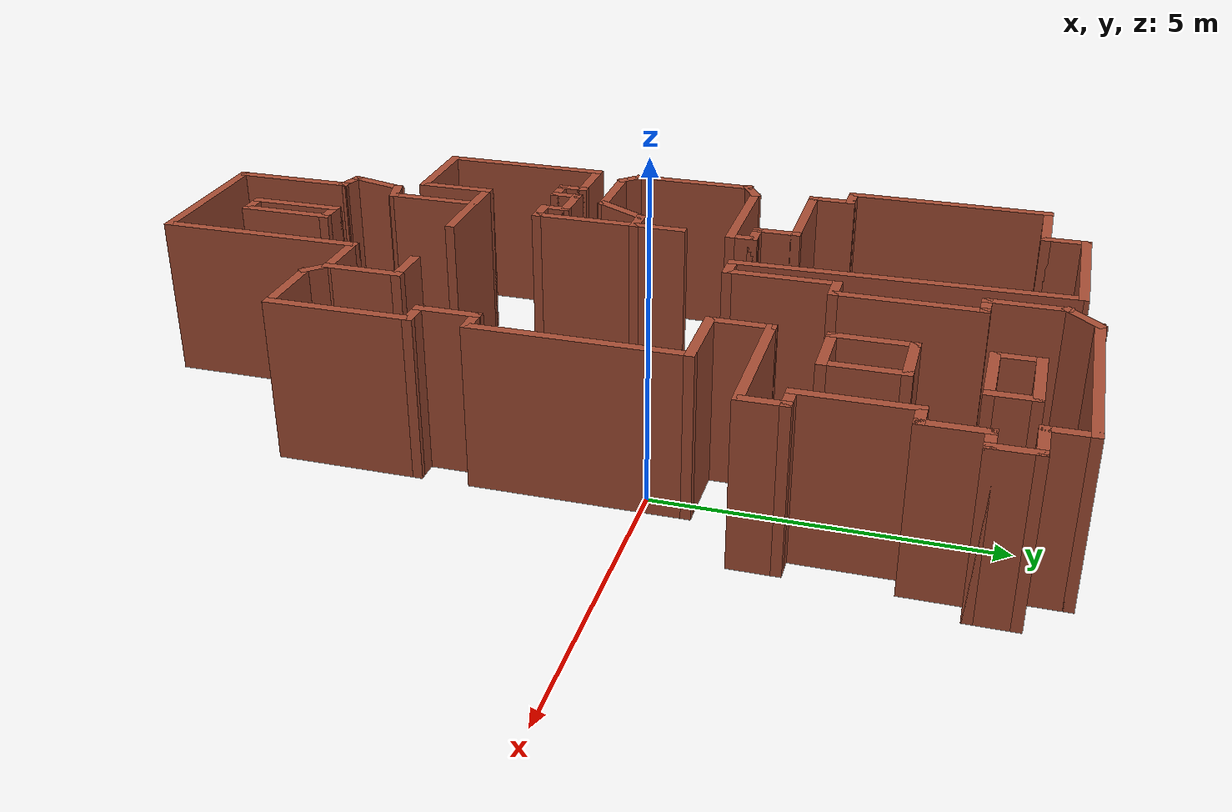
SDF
<?xml version='1.0'?>
<sdf version='1.6'>
  <model name='map_49'>
    <pose frame=''>-2.26527 -1.25132 0 0 -0 0</pose>
    <link name='Wall_0'>
      <collision name='Wall_0_Collision'>
        <geometry>
          <box>
            <size>2.25 0.15 2.5</size>
          </box>
        </geometry>
        <pose frame=''>0 0 1.25 0 -0 0</pose>
      </collision>
      <visual name='Wall_0_Visual'>
        <pose frame=''>0 0 1.25 0 -0 0</pose>
        <geometry>
          <box>
            <size>2.25 0.15 2.5</size>
          </box>
        </geometry>
        <material>
          <script>
            <uri>file://media/materials/scripts/gazebo.material</uri>
            <name>Gazebo/Bricks</name>
          </script>
          <ambient>1 1 1 1</ambient>
        </material>
        <meta>
          <layer>0</layer>
        </meta>
      </visual>
      <pose frame=''>-1.73014 6.76149 0 0 -0 3.14159</pose>
    </link>
    <link name='Wall_1'>
      <collision name='Wall_1_Collision'>
        <geometry>
          <box>
            <size>0.75 0.15 2.5</size>
          </box>
        </geometry>
        <pose frame=''>0 0 1.25 0 -0 0</pose>
      </collision>
      <visual name='Wall_1_Visual'>
        <pose frame=''>0 0 1.25 0 -0 0</pose>
        <geometry>
          <box>
            <size>0.75 0.15 2.5</size>
          </box>
        </geometry>
        <material>
          <script>
            <uri>file://media/materials/scripts/gazebo.material</uri>
            <name>Gazebo/Bricks</name>
          </script>
          <ambient>1 1 1 1</ambient>
        </material>
        <meta>
          <layer>0</layer>
        </meta>
      </visual>
      <pose frame=''>-2.78014 6.46149 0 0 -0 -1.5708</pose>
    </link>
    <link name='Wall_10'>
      <collision name='Wall_10_Collision'>
        <geometry>
          <box>
            <size>0.75 0.15 2.5</size>
          </box>
        </geometry>
        <pose frame=''>0 0 1.25 0 -0 0</pose>
      </collision>
      <visual name='Wall_10_Visual'>
        <pose frame=''>0 0 1.25 0 -0 0</pose>
        <geometry>
          <box>
            <size>0.75 0.15 2.5</size>
          </box>
        </geometry>
        <material>
          <script>
            <uri>file://media/materials/scripts/gazebo.material</uri>
            <name>Gazebo/Bricks</name>
          </script>
          <ambient>1 1 1 1</ambient>
        </material>
        <meta>
          <layer>0</layer>
        </meta>
      </visual>
      <pose frame=''>-1.93014 2.16149 0 0 -0 -1.5708</pose>
    </link>
    <link name='Wall_11'>
      <collision name='Wall_11_Collision'>
        <geometry>
          <box>
            <size>0.5 0.15 2.5</size>
          </box>
        </geometry>
        <pose frame=''>0 0 1.25 0 -0 0</pose>
      </collision>
      <visual name='Wall_11_Visual'>
        <pose frame=''>0 0 1.25 0 -0 0</pose>
        <geometry>
          <box>
            <size>0.5 0.15 2.5</size>
          </box>
        </geometry>
        <material>
          <script>
            <uri>file://media/materials/scripts/gazebo.material</uri>
            <name>Gazebo/Bricks</name>
          </script>
          <ambient>1 1 1 1</ambient>
        </material>
        <meta>
          <layer>0</layer>
        </meta>
      </visual>
      <pose frame=''>-1.75514 1.86149 0 0 -0 0</pose>
    </link>
    <link name='Wall_16'>
      <collision name='Wall_16_Collision'>
        <geometry>
          <box>
            <size>0.5 0.15 2.5</size>
          </box>
        </geometry>
        <pose frame=''>0 0 1.25 0 -0 0</pose>
      </collision>
      <visual name='Wall_16_Visual'>
        <pose frame=''>0 0 1.25 0 -0 0</pose>
        <geometry>
          <box>
            <size>0.5 0.15 2.5</size>
          </box>
        </geometry>
        <material>
          <script>
            <uri>file://media/materials/scripts/gazebo.material</uri>
            <name>Gazebo/Bricks</name>
          </script>
          <ambient>1 1 1 1</ambient>
        </material>
        <meta>
          <layer>0</layer>
        </meta>
      </visual>
      <pose frame=''>-1.58014 1.68649 0 0 -0 -1.5708</pose>
    </link>
    <link name='Wall_17'>
      <collision name='Wall_17_Collision'>
        <geometry>
          <box>
            <size>2 0.15 2.5</size>
          </box>
        </geometry>
        <pose frame=''>0 0 1.25 0 -0 0</pose>
      </collision>
      <visual name='Wall_17_Visual'>
        <pose frame=''>0 0 1.25 0 -0 0</pose>
        <geometry>
          <box>
            <size>2 0.15 2.5</size>
          </box>
        </geometry>
        <material>
          <script>
            <uri>file://media/materials/scripts/gazebo.material</uri>
            <name>Gazebo/Bricks</name>
          </script>
          <ambient>1 1 1 1</ambient>
        </material>
        <meta>
          <layer>0</layer>
        </meta>
      </visual>
      <pose frame=''>-2.50514 1.51149 0 0 -0 3.14159</pose>
    </link>
    <link name='Wall_18'>
      <collision name='Wall_18_Collision'>
        <geometry>
          <box>
            <size>0.5 0.15 2.5</size>
          </box>
        </geometry>
        <pose frame=''>0 0 1.25 0 -0 0</pose>
      </collision>
      <visual name='Wall_18_Visual'>
        <pose frame=''>0 0 1.25 0 -0 0</pose>
        <geometry>
          <box>
            <size>0.5 0.15 2.5</size>
          </box>
        </geometry>
        <material>
          <script>
            <uri>file://media/materials/scripts/gazebo.material</uri>
            <name>Gazebo/Bricks</name>
          </script>
          <ambient>1 1 1 1</ambient>
        </material>
        <meta>
          <layer>0</layer>
        </meta>
      </visual>
      <pose frame=''>-3.5817 1.42399 0 0 -0 -2.61799</pose>
    </link>
    <link name='Wall_19'>
      <collision name='Wall_19_Collision'>
        <geometry>
          <box>
            <size>2 0.15 2.5</size>
          </box>
        </geometry>
        <pose frame=''>0 0 1.25 0 -0 0</pose>
      </collision>
      <visual name='Wall_19_Visual'>
        <pose frame=''>0 0 1.25 0 -0 0</pose>
        <geometry>
          <box>
            <size>2 0.15 2.5</size>
          </box>
        </geometry>
        <material>
          <script>
            <uri>file://media/materials/scripts/gazebo.material</uri>
            <name>Gazebo/Bricks</name>
          </script>
          <ambient>1 1 1 1</ambient>
        </material>
        <meta>
          <layer>0</layer>
        </meta>
      </visual>
      <pose frame=''>-3.73325 0.411493 0 0 -0 -1.5708</pose>
    </link>
    <link name='Wall_2'>
      <collision name='Wall_2_Collision'>
        <geometry>
          <box>
            <size>1.25 0.15 2.5</size>
          </box>
        </geometry>
        <pose frame=''>0 0 1.25 0 -0 0</pose>
      </collision>
      <visual name='Wall_2_Visual'>
        <pose frame=''>0 0 1.25 0 -0 0</pose>
        <geometry>
          <box>
            <size>1.25 0.15 2.5</size>
          </box>
        </geometry>
        <material>
          <script>
            <uri>file://media/materials/scripts/gazebo.material</uri>
            <name>Gazebo/Bricks</name>
          </script>
          <ambient>1 1 1 1</ambient>
        </material>
        <meta>
          <layer>0</layer>
        </meta>
      </visual>
      <pose frame=''>-3.33014 6.16149 0 0 -0 3.14159</pose>
    </link>
    <link name='Wall_20'>
      <collision name='Wall_20_Collision'>
        <geometry>
          <box>
            <size>0.5 0.15 2.5</size>
          </box>
        </geometry>
        <pose frame=''>0 0 1.25 0 -0 0</pose>
      </collision>
      <visual name='Wall_20_Visual'>
        <pose frame=''>0 0 1.25 0 -0 0</pose>
        <geometry>
          <box>
            <size>0.5 0.15 2.5</size>
          </box>
        </geometry>
        <material>
          <script>
            <uri>file://media/materials/scripts/gazebo.material</uri>
            <name>Gazebo/Bricks</name>
          </script>
          <ambient>1 1 1 1</ambient>
        </material>
        <meta>
          <layer>0</layer>
        </meta>
      </visual>
      <pose frame=''>-3.60951 -0.637251 0 0 -0 -0.785398</pose>
    </link>
    <link name='Wall_21'>
      <collision name='Wall_21_Collision'>
        <geometry>
          <box>
            <size>1.25 0.15 2.5</size>
          </box>
        </geometry>
        <pose frame=''>0 0 1.25 0 -0 0</pose>
      </collision>
      <visual name='Wall_21_Visual'>
        <pose frame=''>0 0 1.25 0 -0 0</pose>
        <geometry>
          <box>
            <size>1.25 0.15 2.5</size>
          </box>
        </geometry>
        <material>
          <script>
            <uri>file://media/materials/scripts/gazebo.material</uri>
            <name>Gazebo/Bricks</name>
          </script>
          <ambient>1 1 1 1</ambient>
        </material>
        <meta>
          <layer>0</layer>
        </meta>
      </visual>
      <pose frame=''>-2.93576 -0.760995 0 0 -0 0</pose>
    </link>
    <link name='Wall_22'>
      <collision name='Wall_22_Collision'>
        <geometry>
          <box>
            <size>1 0.15 2.5</size>
          </box>
        </geometry>
        <pose frame=''>0 0 1.25 0 -0 0</pose>
      </collision>
      <visual name='Wall_22_Visual'>
        <pose frame=''>0 0 1.25 0 -0 0</pose>
        <geometry>
          <box>
            <size>1 0.15 2.5</size>
          </box>
        </geometry>
        <material>
          <script>
            <uri>file://media/materials/scripts/gazebo.material</uri>
            <name>Gazebo/Bricks</name>
          </script>
          <ambient>1 1 1 1</ambient>
        </material>
        <meta>
          <layer>0</layer>
        </meta>
      </visual>
      <pose frame=''>-2.17326 -0.392934 0 0 -0 1.0472</pose>
    </link>
    <link name='Wall_23'>
      <collision name='Wall_23_Collision'>
        <geometry>
          <box>
            <size>0.5 0.15 2.5</size>
          </box>
        </geometry>
        <pose frame=''>0 0 1.25 0 -0 0</pose>
      </collision>
      <visual name='Wall_23_Visual'>
        <pose frame=''>0 0 1.25 0 -0 0</pose>
        <geometry>
          <box>
            <size>0.5 0.15 2.5</size>
          </box>
        </geometry>
        <material>
          <script>
            <uri>file://media/materials/scripts/gazebo.material</uri>
            <name>Gazebo/Bricks</name>
          </script>
          <ambient>1 1 1 1</ambient>
        </material>
        <meta>
          <layer>0</layer>
        </meta>
      </visual>
      <pose frame=''>-1.78576 -0.024873 0 0 -0 0</pose>
    </link>
    <link name='Wall_25'>
      <collision name='Wall_25_Collision'>
        <geometry>
          <box>
            <size>2.5 0.15 2.5</size>
          </box>
        </geometry>
        <pose frame=''>0 0 1.25 0 -0 0</pose>
      </collision>
      <visual name='Wall_25_Visual'>
        <pose frame=''>0 0 1.25 0 -0 0</pose>
        <geometry>
          <box>
            <size>2.5 0.15 2.5</size>
          </box>
        </geometry>
        <material>
          <script>
            <uri>file://media/materials/scripts/gazebo.material</uri>
            <name>Gazebo/Bricks</name>
          </script>
          <ambient>1 1 1 1</ambient>
        </material>
        <meta>
          <layer>0</layer>
        </meta>
      </visual>
      <pose frame=''>-1.61115 -0.451753 0 0 -0 -1.5708</pose>
    </link>
    <link name='Wall_26'>
      <collision name='Wall_26_Collision'>
        <geometry>
          <box>
            <size>0.5 0.15 2.5</size>
          </box>
        </geometry>
        <pose frame=''>0 0 1.25 0 -0 0</pose>
      </collision>
      <visual name='Wall_26_Visual'>
        <pose frame=''>0 0 1.25 0 -0 0</pose>
        <geometry>
          <box>
            <size>0.5 0.15 2.5</size>
          </box>
        </geometry>
        <material>
          <script>
            <uri>file://media/materials/scripts/gazebo.material</uri>
            <name>Gazebo/Bricks</name>
          </script>
          <ambient>1 1 1 1</ambient>
        </material>
        <meta>
          <layer>0</layer>
        </meta>
      </visual>
      <pose frame=''>-1.78615 -1.62675 0 0 -0 3.14159</pose>
    </link>
    <link name='Wall_27'>
      <collision name='Wall_27_Collision'>
        <geometry>
          <box>
            <size>0.5 0.15 2.5</size>
          </box>
        </geometry>
        <pose frame=''>0 0 1.25 0 -0 0</pose>
      </collision>
      <visual name='Wall_27_Visual'>
        <pose frame=''>0 0 1.25 0 -0 0</pose>
        <geometry>
          <box>
            <size>0.5 0.15 2.5</size>
          </box>
        </geometry>
        <material>
          <script>
            <uri>file://media/materials/scripts/gazebo.material</uri>
            <name>Gazebo/Bricks</name>
          </script>
          <ambient>1 1 1 1</ambient>
        </material>
        <meta>
          <layer>0</layer>
        </meta>
      </visual>
      <pose frame=''>-1.96115 -1.45175 0 0 -0 1.5708</pose>
    </link>
    <link name='Wall_28'>
      <collision name='Wall_28_Collision'>
        <geometry>
          <box>
            <size>0.75 0.15 2.5</size>
          </box>
        </geometry>
        <pose frame=''>0 0 1.25 0 -0 0</pose>
      </collision>
      <visual name='Wall_28_Visual'>
        <pose frame=''>0 0 1.25 0 -0 0</pose>
        <geometry>
          <box>
            <size>0.75 0.15 2.5</size>
          </box>
        </geometry>
        <material>
          <script>
            <uri>file://media/materials/scripts/gazebo.material</uri>
            <name>Gazebo/Bricks</name>
          </script>
          <ambient>1 1 1 1</ambient>
        </material>
        <meta>
          <layer>0</layer>
        </meta>
      </visual>
      <pose frame=''>-2.26115 -1.27675 0 0 -0 3.14159</pose>
    </link>
    <link name='Wall_29'>
      <collision name='Wall_29_Collision'>
        <geometry>
          <box>
            <size>0.5 0.15 2.5</size>
          </box>
        </geometry>
        <pose frame=''>0 0 1.25 0 -0 0</pose>
      </collision>
      <visual name='Wall_29_Visual'>
        <pose frame=''>0 0 1.25 0 -0 0</pose>
        <geometry>
          <box>
            <size>0.5 0.15 2.5</size>
          </box>
        </geometry>
        <material>
          <script>
            <uri>file://media/materials/scripts/gazebo.material</uri>
            <name>Gazebo/Bricks</name>
          </script>
          <ambient>1 1 1 1</ambient>
        </material>
        <meta>
          <layer>0</layer>
        </meta>
      </visual>
      <pose frame=''>-2.56115 -1.45175 0 0 -0 -1.5708</pose>
    </link>
    <link name='Wall_3'>
      <collision name='Wall_3_Collision'>
        <geometry>
          <box>
            <size>3.25 0.15 2.5</size>
          </box>
        </geometry>
        <pose frame=''>0 0 1.25 0 -0 0</pose>
      </collision>
      <visual name='Wall_3_Visual'>
        <pose frame=''>0 0 1.25 0 -0 0</pose>
        <geometry>
          <box>
            <size>3.25 0.15 2.5</size>
          </box>
        </geometry>
        <material>
          <script>
            <uri>file://media/materials/scripts/gazebo.material</uri>
            <name>Gazebo/Bricks</name>
          </script>
          <ambient>1 1 1 1</ambient>
        </material>
        <meta>
          <layer>0</layer>
        </meta>
      </visual>
      <pose frame=''>-3.88014 4.61149 0 0 -0 -1.5708</pose>
    </link>
    <link name='Wall_30'>
      <collision name='Wall_30_Collision'>
        <geometry>
          <box>
            <size>0.5 0.15 2.5</size>
          </box>
        </geometry>
        <pose frame=''>0 0 1.25 0 -0 0</pose>
      </collision>
      <visual name='Wall_30_Visual'>
        <pose frame=''>0 0 1.25 0 -0 0</pose>
        <geometry>
          <box>
            <size>0.5 0.15 2.5</size>
          </box>
        </geometry>
        <material>
          <script>
            <uri>file://media/materials/scripts/gazebo.material</uri>
            <name>Gazebo/Bricks</name>
          </script>
          <ambient>1 1 1 1</ambient>
        </material>
        <meta>
          <layer>0</layer>
        </meta>
      </visual>
      <pose frame=''>-2.73615 -1.62675 0 0 -0 3.14159</pose>
    </link>
    <link name='Wall_31'>
      <collision name='Wall_31_Collision'>
        <geometry>
          <box>
            <size>0.5 0.15 2.5</size>
          </box>
        </geometry>
        <pose frame=''>0 0 1.25 0 -0 0</pose>
      </collision>
      <visual name='Wall_31_Visual'>
        <pose frame=''>0 0 1.25 0 -0 0</pose>
        <geometry>
          <box>
            <size>0.5 0.15 2.5</size>
          </box>
        </geometry>
        <material>
          <script>
            <uri>file://media/materials/scripts/gazebo.material</uri>
            <name>Gazebo/Bricks</name>
          </script>
          <ambient>1 1 1 1</ambient>
        </material>
        <meta>
          <layer>0</layer>
        </meta>
      </visual>
      <pose frame=''>-2.91115 -1.45175 0 0 -0 1.5708</pose>
    </link>
    <link name='Wall_32'>
      <collision name='Wall_32_Collision'>
        <geometry>
          <box>
            <size>1 0.15 2.5</size>
          </box>
        </geometry>
        <pose frame=''>0 0 1.25 0 -0 0</pose>
      </collision>
      <visual name='Wall_32_Visual'>
        <pose frame=''>0 0 1.25 0 -0 0</pose>
        <geometry>
          <box>
            <size>1 0.15 2.5</size>
          </box>
        </geometry>
        <material>
          <script>
            <uri>file://media/materials/scripts/gazebo.material</uri>
            <name>Gazebo/Bricks</name>
          </script>
          <ambient>1 1 1 1</ambient>
        </material>
        <meta>
          <layer>0</layer>
        </meta>
      </visual>
      <pose frame=''>-3.33615 -1.27675 0 0 -0 3.14159</pose>
    </link>
    <link name='Wall_33'>
      <collision name='Wall_33_Collision'>
        <geometry>
          <box>
            <size>2.75 0.15 2.5</size>
          </box>
        </geometry>
        <pose frame=''>0 0 1.25 0 -0 0</pose>
      </collision>
      <visual name='Wall_33_Visual'>
        <pose frame=''>0 0 1.25 0 -0 0</pose>
        <geometry>
          <box>
            <size>2.75 0.15 2.5</size>
          </box>
        </geometry>
        <material>
          <script>
            <uri>file://media/materials/scripts/gazebo.material</uri>
            <name>Gazebo/Bricks</name>
          </script>
          <ambient>1 1 1 1</ambient>
        </material>
        <meta>
          <layer>0</layer>
        </meta>
      </visual>
      <pose frame=''>-3.76115 -2.57675 0 0 -0 -1.5708</pose>
    </link>
    <link name='Wall_34'>
      <collision name='Wall_34_Collision'>
        <geometry>
          <box>
            <size>1.5 0.15 2.5</size>
          </box>
        </geometry>
        <pose frame=''>0 0 1.25 0 -0 0</pose>
      </collision>
      <visual name='Wall_34_Visual'>
        <pose frame=''>0 0 1.25 0 -0 0</pose>
        <geometry>
          <box>
            <size>1.5 0.15 2.5</size>
          </box>
        </geometry>
        <material>
          <script>
            <uri>file://media/materials/scripts/gazebo.material</uri>
            <name>Gazebo/Bricks</name>
          </script>
          <ambient>1 1 1 1</ambient>
        </material>
        <meta>
          <layer>0</layer>
        </meta>
      </visual>
      <pose frame=''>-3.08615 -3.87675 0 0 -0 0</pose>
    </link>
    <link name='Wall_35'>
      <collision name='Wall_35_Collision'>
        <geometry>
          <box>
            <size>1.25 0.15 2.5</size>
          </box>
        </geometry>
        <pose frame=''>0 0 1.25 0 -0 0</pose>
      </collision>
      <visual name='Wall_35_Visual'>
        <pose frame=''>0 0 1.25 0 -0 0</pose>
        <geometry>
          <box>
            <size>1.25 0.15 2.5</size>
          </box>
        </geometry>
        <material>
          <script>
            <uri>file://media/materials/scripts/gazebo.material</uri>
            <name>Gazebo/Bricks</name>
          </script>
          <ambient>1 1 1 1</ambient>
        </material>
        <meta>
          <layer>0</layer>
        </meta>
      </visual>
      <pose frame=''>-2.41115 -3.32675 0 0 -0 1.5708</pose>
    </link>
    <link name='Wall_37'>
      <collision name='Wall_37_Collision'>
        <geometry>
          <box>
            <size>1.75 0.15 2.5</size>
          </box>
        </geometry>
        <pose frame=''>0 0 1.25 0 -0 0</pose>
      </collision>
      <visual name='Wall_37_Visual'>
        <pose frame=''>0 0 1.25 0 -0 0</pose>
        <geometry>
          <box>
            <size>1.75 0.15 2.5</size>
          </box>
        </geometry>
        <material>
          <script>
            <uri>file://media/materials/scripts/gazebo.material</uri>
            <name>Gazebo/Bricks</name>
          </script>
          <ambient>1 1 1 1</ambient>
        </material>
        <meta>
          <layer>0</layer>
        </meta>
      </visual>
      <pose frame=''>-1.61115 -2.77675 0 0 -0 0</pose>
    </link>
    <link name='Wall_39'>
      <collision name='Wall_39_Collision'>
        <geometry>
          <box>
            <size>1.5 0.15 2.5</size>
          </box>
        </geometry>
        <pose frame=''>0 0 1.25 0 -0 0</pose>
      </collision>
      <visual name='Wall_39_Visual'>
        <pose frame=''>0 0 1.25 0 -0 0</pose>
        <geometry>
          <box>
            <size>1.5 0.15 2.5</size>
          </box>
        </geometry>
        <material>
          <script>
            <uri>file://media/materials/scripts/gazebo.material</uri>
            <name>Gazebo/Bricks</name>
          </script>
          <ambient>1 1 1 1</ambient>
        </material>
        <meta>
          <layer>0</layer>
        </meta>
      </visual>
      <pose frame=''>-1.79735 -3.48958 0 0 -0 -1.5708</pose>
    </link>
    <link name='Wall_4'>
      <collision name='Wall_4_Collision'>
        <geometry>
          <box>
            <size>0.5 0.15 2.5</size>
          </box>
        </geometry>
        <pose frame=''>0 0 1.25 0 -0 0</pose>
      </collision>
      <visual name='Wall_4_Visual'>
        <pose frame=''>0 0 1.25 0 -0 0</pose>
        <geometry>
          <box>
            <size>0.5 0.15 2.5</size>
          </box>
        </geometry>
        <material>
          <script>
            <uri>file://media/materials/scripts/gazebo.material</uri>
            <name>Gazebo/Bricks</name>
          </script>
          <ambient>1 1 1 1</ambient>
        </material>
        <meta>
          <layer>0</layer>
        </meta>
      </visual>
      <pose frame=''>-3.70514 3.06149 0 0 -0 0</pose>
    </link>
    <link name='Wall_40'>
      <collision name='Wall_40_Collision'>
        <geometry>
          <box>
            <size>0.5 0.15 2.5</size>
          </box>
        </geometry>
        <pose frame=''>0 0 1.25 0 -0 0</pose>
      </collision>
      <visual name='Wall_40_Visual'>
        <pose frame=''>0 0 1.25 0 -0 0</pose>
        <geometry>
          <box>
            <size>0.5 0.15 2.5</size>
          </box>
        </geometry>
        <material>
          <script>
            <uri>file://media/materials/scripts/gazebo.material</uri>
            <name>Gazebo/Bricks</name>
          </script>
          <ambient>1 1 1 1</ambient>
        </material>
        <meta>
          <layer>0</layer>
        </meta>
      </visual>
      <pose frame=''>-1.96639 -4.20987 0 0 -0 -2.87979</pose>
    </link>
    <link name='Wall_41'>
      <collision name='Wall_41_Collision'>
        <geometry>
          <box>
            <size>1 0.15 2.5</size>
          </box>
        </geometry>
        <pose frame=''>0 0 1.25 0 -0 0</pose>
      </collision>
      <visual name='Wall_41_Visual'>
        <pose frame=''>0 0 1.25 0 -0 0</pose>
        <geometry>
          <box>
            <size>1 0.15 2.5</size>
          </box>
        </geometry>
        <material>
          <script>
            <uri>file://media/materials/scripts/gazebo.material</uri>
            <name>Gazebo/Bricks</name>
          </script>
          <ambient>1 1 1 1</ambient>
        </material>
        <meta>
          <layer>0</layer>
        </meta>
      </visual>
      <pose frame=''>-2.24542 -4.66568 0 0 -0 -1.8326</pose>
    </link>
    <link name='Wall_42'>
      <collision name='Wall_42_Collision'>
        <geometry>
          <box>
            <size>0.5 0.15 2.5</size>
          </box>
        </geometry>
        <pose frame=''>0 0 1.25 0 -0 0</pose>
      </collision>
      <visual name='Wall_42_Visual'>
        <pose frame=''>0 0 1.25 0 -0 0</pose>
        <geometry>
          <box>
            <size>0.5 0.15 2.5</size>
          </box>
        </geometry>
        <material>
          <script>
            <uri>file://media/materials/scripts/gazebo.material</uri>
            <name>Gazebo/Bricks</name>
          </script>
          <ambient>1 1 1 1</ambient>
        </material>
        <meta>
          <layer>0</layer>
        </meta>
      </visual>
      <pose frame=''>-2.18638 -5.1215 0 0 -0 -0.261799</pose>
    </link>
    <link name='Wall_43'>
      <collision name='Wall_43_Collision'>
        <geometry>
          <box>
            <size>2 0.15 2.5</size>
          </box>
        </geometry>
        <pose frame=''>0 0 1.25 0 -0 0</pose>
      </collision>
      <visual name='Wall_43_Visual'>
        <pose frame=''>0 0 1.25 0 -0 0</pose>
        <geometry>
          <box>
            <size>2 0.15 2.5</size>
          </box>
        </geometry>
        <material>
          <script>
            <uri>file://media/materials/scripts/gazebo.material</uri>
            <name>Gazebo/Bricks</name>
          </script>
          <ambient>1 1 1 1</ambient>
        </material>
        <meta>
          <layer>0</layer>
        </meta>
      </visual>
      <pose frame=''>-2.01735 -6.09179 0 0 -0 -1.5708</pose>
    </link>
    <link name='Wall_44'>
      <collision name='Wall_44_Collision'>
        <geometry>
          <box>
            <size>2.5 0.15 2.5</size>
          </box>
        </geometry>
        <pose frame=''>0 0 1.25 0 -0 0</pose>
      </collision>
      <visual name='Wall_44_Visual'>
        <pose frame=''>0 0 1.25 0 -0 0</pose>
        <geometry>
          <box>
            <size>2.5 0.15 2.5</size>
          </box>
        </geometry>
        <material>
          <script>
            <uri>file://media/materials/scripts/gazebo.material</uri>
            <name>Gazebo/Bricks</name>
          </script>
          <ambient>1 1 1 1</ambient>
        </material>
        <meta>
          <layer>0</layer>
        </meta>
      </visual>
      <pose frame=''>-0.842346 -7.01679 0 0 -0 0</pose>
    </link>
    <link name='Wall_45'>
      <collision name='Wall_45_Collision'>
        <geometry>
          <box>
            <size>3.25 0.15 2.5</size>
          </box>
        </geometry>
        <pose frame=''>0 0 1.25 0 -0 0</pose>
      </collision>
      <visual name='Wall_45_Visual'>
        <pose frame=''>0 0 1.25 0 -0 0</pose>
        <geometry>
          <box>
            <size>3.25 0.15 2.5</size>
          </box>
        </geometry>
        <material>
          <script>
            <uri>file://media/materials/scripts/gazebo.material</uri>
            <name>Gazebo/Bricks</name>
          </script>
          <ambient>1 1 1 1</ambient>
        </material>
        <meta>
          <layer>0</layer>
        </meta>
      </visual>
      <pose frame=''>0.332654 -5.46679 0 0 -0 1.5708</pose>
    </link>
    <link name='Wall_46'>
      <collision name='Wall_46_Collision'>
        <geometry>
          <box>
            <size>1 0.15 2.5</size>
          </box>
        </geometry>
        <pose frame=''>0 0 1.25 0 -0 0</pose>
      </collision>
      <visual name='Wall_46_Visual'>
        <pose frame=''>0 0 1.25 0 -0 0</pose>
        <geometry>
          <box>
            <size>1 0.15 2.5</size>
          </box>
        </geometry>
        <material>
          <script>
            <uri>file://media/materials/scripts/gazebo.material</uri>
            <name>Gazebo/Bricks</name>
          </script>
          <ambient>1 1 1 1</ambient>
        </material>
        <meta>
          <layer>0</layer>
        </meta>
      </visual>
      <pose frame=''>0.757654 -3.91679 0 0 -0 0</pose>
    </link>
    <link name='Wall_47'>
      <collision name='Wall_47_Collision'>
        <geometry>
          <box>
            <size>1.25 0.15 2.5</size>
          </box>
        </geometry>
        <pose frame=''>0 0 1.25 0 -0 0</pose>
      </collision>
      <visual name='Wall_47_Visual'>
        <pose frame=''>0 0 1.25 0 -0 0</pose>
        <geometry>
          <box>
            <size>1.25 0.15 2.5</size>
          </box>
        </geometry>
        <material>
          <script>
            <uri>file://media/materials/scripts/gazebo.material</uri>
            <name>Gazebo/Bricks</name>
          </script>
          <ambient>1 1 1 1</ambient>
        </material>
        <meta>
          <layer>0</layer>
        </meta>
      </visual>
      <pose frame=''>1.18265 -3.36679 0 0 -0 1.5708</pose>
    </link>
    <link name='Wall_48'>
      <collision name='Wall_48_Collision'>
        <geometry>
          <box>
            <size>0.75 0.15 2.5</size>
          </box>
        </geometry>
        <pose frame=''>0 0 1.25 0 -0 0</pose>
      </collision>
      <visual name='Wall_48_Visual'>
        <pose frame=''>0 0 1.25 0 -0 0</pose>
        <geometry>
          <box>
            <size>0.75 0.15 2.5</size>
          </box>
        </geometry>
        <material>
          <script>
            <uri>file://media/materials/scripts/gazebo.material</uri>
            <name>Gazebo/Bricks</name>
          </script>
          <ambient>1 1 1 1</ambient>
        </material>
        <meta>
          <layer>0</layer>
        </meta>
      </visual>
      <pose frame=''>0.882654 -2.81679 0 0 -0 3.14159</pose>
    </link>
    <link name='Wall_5'>
      <collision name='Wall_5_Collision'>
        <geometry>
          <box>
            <size>0.75 0.15 2.5</size>
          </box>
        </geometry>
        <pose frame=''>0 0 1.25 0 -0 0</pose>
      </collision>
      <visual name='Wall_5_Visual'>
        <pose frame=''>0 0 1.25 0 -0 0</pose>
        <geometry>
          <box>
            <size>0.75 0.15 2.5</size>
          </box>
        </geometry>
        <material>
          <script>
            <uri>file://media/materials/scripts/gazebo.material</uri>
            <name>Gazebo/Bricks</name>
          </script>
          <ambient>1 1 1 1</ambient>
        </material>
        <meta>
          <layer>0</layer>
        </meta>
      </visual>
      <pose frame=''>-3.53014 2.76149 0 0 -0 -1.5708</pose>
    </link>
    <link name='Wall_50'>
      <collision name='Wall_50_Collision'>
        <geometry>
          <box>
            <size>0.5 0.15 2.5</size>
          </box>
        </geometry>
        <pose frame=''>0 0 1.25 0 -0 0</pose>
      </collision>
      <visual name='Wall_50_Visual'>
        <pose frame=''>0 0 1.25 0 -0 0</pose>
        <geometry>
          <box>
            <size>0.5 0.15 2.5</size>
          </box>
        </geometry>
        <material>
          <script>
            <uri>file://media/materials/scripts/gazebo.material</uri>
            <name>Gazebo/Bricks</name>
          </script>
          <ambient>1 1 1 1</ambient>
        </material>
        <meta>
          <layer>0</layer>
        </meta>
      </visual>
      <pose frame=''>1.3064 -4.04053 0 0 -0 -0.785398</pose>
    </link>
    <link name='Wall_51'>
      <collision name='Wall_51_Collision'>
        <geometry>
          <box>
            <size>1.25 0.15 2.5</size>
          </box>
        </geometry>
        <pose frame=''>0 0 1.25 0 -0 0</pose>
      </collision>
      <visual name='Wall_51_Visual'>
        <pose frame=''>0 0 1.25 0 -0 0</pose>
        <geometry>
          <box>
            <size>1.25 0.15 2.5</size>
          </box>
        </geometry>
        <material>
          <script>
            <uri>file://media/materials/scripts/gazebo.material</uri>
            <name>Gazebo/Bricks</name>
          </script>
          <ambient>1 1 1 1</ambient>
        </material>
        <meta>
          <layer>0</layer>
        </meta>
      </visual>
      <pose frame=''>1.98014 -4.16428 0 0 -0 0</pose>
    </link>
    <link name='Wall_52'>
      <collision name='Wall_52_Collision'>
        <geometry>
          <box>
            <size>2.25 0.15 2.5</size>
          </box>
        </geometry>
        <pose frame=''>0 0 1.25 0 -0 0</pose>
      </collision>
      <visual name='Wall_52_Visual'>
        <pose frame=''>0 0 1.25 0 -0 0</pose>
        <geometry>
          <box>
            <size>2.25 0.15 2.5</size>
          </box>
        </geometry>
        <material>
          <script>
            <uri>file://media/materials/scripts/gazebo.material</uri>
            <name>Gazebo/Bricks</name>
          </script>
          <ambient>1 1 1 1</ambient>
        </material>
        <meta>
          <layer>0</layer>
        </meta>
      </visual>
      <pose frame=''>2.53014 -3.11428 0 0 -0 1.5708</pose>
    </link>
    <link name='Wall_55'>
      <collision name='Wall_55_Collision'>
        <geometry>
          <box>
            <size>0.5 0.15 2.5</size>
          </box>
        </geometry>
        <pose frame=''>0 0 1.25 0 -0 0</pose>
      </collision>
      <visual name='Wall_55_Visual'>
        <pose frame=''>0 0 1.25 0 -0 0</pose>
        <geometry>
          <box>
            <size>0.5 0.15 2.5</size>
          </box>
        </geometry>
        <material>
          <script>
            <uri>file://media/materials/scripts/gazebo.material</uri>
            <name>Gazebo/Bricks</name>
          </script>
          <ambient>1 1 1 1</ambient>
        </material>
        <meta>
          <layer>0</layer>
        </meta>
      </visual>
      <pose frame=''>2.35514 -2.06428 0 0 -0 3.14159</pose>
    </link>
    <link name='Wall_56'>
      <collision name='Wall_56_Collision'>
        <geometry>
          <box>
            <size>1 0.15 2.5</size>
          </box>
        </geometry>
        <pose frame=''>0 0 1.25 0 -0 0</pose>
      </collision>
      <visual name='Wall_56_Visual'>
        <pose frame=''>0 0 1.25 0 -0 0</pose>
        <geometry>
          <box>
            <size>1 0.15 2.5</size>
          </box>
        </geometry>
        <material>
          <script>
            <uri>file://media/materials/scripts/gazebo.material</uri>
            <name>Gazebo/Bricks</name>
          </script>
          <ambient>1 1 1 1</ambient>
        </material>
        <meta>
          <layer>0</layer>
        </meta>
      </visual>
      <pose frame=''>2.18014 -1.63928 0 0 -0 1.5708</pose>
    </link>
    <link name='Wall_57'>
      <collision name='Wall_57_Collision'>
        <geometry>
          <box>
            <size>0.5 0.15 2.5</size>
          </box>
        </geometry>
        <pose frame=''>0 0 1.25 0 -0 0</pose>
      </collision>
      <visual name='Wall_57_Visual'>
        <pose frame=''>0 0 1.25 0 -0 0</pose>
        <geometry>
          <box>
            <size>0.5 0.15 2.5</size>
          </box>
        </geometry>
        <material>
          <script>
            <uri>file://media/materials/scripts/gazebo.material</uri>
            <name>Gazebo/Bricks</name>
          </script>
          <ambient>1 1 1 1</ambient>
        </material>
        <meta>
          <layer>0</layer>
        </meta>
      </visual>
      <pose frame=''>2.35514 -1.21428 0 0 -0 0</pose>
    </link>
    <link name='Wall_58'>
      <collision name='Wall_58_Collision'>
        <geometry>
          <box>
            <size>3.25 0.15 2.5</size>
          </box>
        </geometry>
        <pose frame=''>0 0 1.25 0 -0 0</pose>
      </collision>
      <visual name='Wall_58_Visual'>
        <pose frame=''>0 0 1.25 0 -0 0</pose>
        <geometry>
          <box>
            <size>3.25 0.15 2.5</size>
          </box>
        </geometry>
        <material>
          <script>
            <uri>file://media/materials/scripts/gazebo.material</uri>
            <name>Gazebo/Bricks</name>
          </script>
          <ambient>1 1 1 1</ambient>
        </material>
        <meta>
          <layer>0</layer>
        </meta>
      </visual>
      <pose frame=''>2.53014 0.335723 0 0 -0 1.5708</pose>
    </link>
    <link name='Wall_59'>
      <collision name='Wall_59_Collision'>
        <geometry>
          <box>
            <size>1.25 0.15 2.5</size>
          </box>
        </geometry>
        <pose frame=''>0 0 1.25 0 -0 0</pose>
      </collision>
      <visual name='Wall_59_Visual'>
        <pose frame=''>0 0 1.25 0 -0 0</pose>
        <geometry>
          <box>
            <size>1.25 0.15 2.5</size>
          </box>
        </geometry>
        <material>
          <script>
            <uri>file://media/materials/scripts/gazebo.material</uri>
            <name>Gazebo/Bricks</name>
          </script>
          <ambient>1 1 1 1</ambient>
        </material>
        <meta>
          <layer>0</layer>
        </meta>
      </visual>
      <pose frame=''>1.98014 1.88572 0 0 -0 3.14159</pose>
    </link>
    <link name='Wall_60'>
      <collision name='Wall_60_Collision'>
        <geometry>
          <box>
            <size>1 0.15 2.5</size>
          </box>
        </geometry>
        <pose frame=''>0 0 1.25 0 -0 0</pose>
      </collision>
      <visual name='Wall_60_Visual'>
        <pose frame=''>0 0 1.25 0 -0 0</pose>
        <geometry>
          <box>
            <size>1 0.15 2.5</size>
          </box>
        </geometry>
        <material>
          <script>
            <uri>file://media/materials/scripts/gazebo.material</uri>
            <name>Gazebo/Bricks</name>
          </script>
          <ambient>1 1 1 1</ambient>
        </material>
        <meta>
          <layer>0</layer>
        </meta>
      </visual>
      <pose frame=''>1.43014 2.31072 0 0 -0 1.5708</pose>
    </link>
    <link name='Wall_61'>
      <collision name='Wall_61_Collision'>
        <geometry>
          <box>
            <size>2.25 0.15 2.5</size>
          </box>
        </geometry>
        <pose frame=''>0 0 1.25 0 -0 0</pose>
      </collision>
      <visual name='Wall_61_Visual'>
        <pose frame=''>0 0 1.25 0 -0 0</pose>
        <geometry>
          <box>
            <size>2.25 0.15 2.5</size>
          </box>
        </geometry>
        <material>
          <script>
            <uri>file://media/materials/scripts/gazebo.material</uri>
            <name>Gazebo/Bricks</name>
          </script>
          <ambient>1 1 1 1</ambient>
        </material>
        <meta>
          <layer>0</layer>
        </meta>
      </visual>
      <pose frame=''>2.48014 2.73572 0 0 -0 0</pose>
    </link>
    <link name='Wall_62'>
      <collision name='Wall_62_Collision'>
        <geometry>
          <box>
            <size>0.75 0.15 2.5</size>
          </box>
        </geometry>
        <pose frame=''>0 0 1.25 0 -0 0</pose>
      </collision>
      <visual name='Wall_62_Visual'>
        <pose frame=''>0 0 1.25 0 -0 0</pose>
        <geometry>
          <box>
            <size>0.75 0.15 2.5</size>
          </box>
        </geometry>
        <material>
          <script>
            <uri>file://media/materials/scripts/gazebo.material</uri>
            <name>Gazebo/Bricks</name>
          </script>
          <ambient>1 1 1 1</ambient>
        </material>
        <meta>
          <layer>0</layer>
        </meta>
      </visual>
      <pose frame=''>3.53014 3.03572 0 0 -0 1.5708</pose>
    </link>
    <link name='Wall_63'>
      <collision name='Wall_63_Collision'>
        <geometry>
          <box>
            <size>0.5 0.15 2.5</size>
          </box>
        </geometry>
        <pose frame=''>0 0 1.25 0 -0 0</pose>
      </collision>
      <visual name='Wall_63_Visual'>
        <pose frame=''>0 0 1.25 0 -0 0</pose>
        <geometry>
          <box>
            <size>0.5 0.15 2.5</size>
          </box>
        </geometry>
        <material>
          <script>
            <uri>file://media/materials/scripts/gazebo.material</uri>
            <name>Gazebo/Bricks</name>
          </script>
          <ambient>1 1 1 1</ambient>
        </material>
        <meta>
          <layer>0</layer>
        </meta>
      </visual>
      <pose frame=''>3.35514 3.33572 0 0 -0 3.14159</pose>
    </link>
    <link name='Wall_64'>
      <collision name='Wall_64_Collision'>
        <geometry>
          <box>
            <size>1.75 0.15 2.5</size>
          </box>
        </geometry>
        <pose frame=''>0 0 1.25 0 -0 0</pose>
      </collision>
      <visual name='Wall_64_Visual'>
        <pose frame=''>0 0 1.25 0 -0 0</pose>
        <geometry>
          <box>
            <size>1.75 0.15 2.5</size>
          </box>
        </geometry>
        <material>
          <script>
            <uri>file://media/materials/scripts/gazebo.material</uri>
            <name>Gazebo/Bricks</name>
          </script>
          <ambient>1 1 1 1</ambient>
        </material>
        <meta>
          <layer>0</layer>
        </meta>
      </visual>
      <pose frame=''>3.18014 4.13572 0 0 -0 1.5708</pose>
    </link>
    <link name='Wall_65'>
      <collision name='Wall_65_Collision'>
        <geometry>
          <box>
            <size>0.5 0.15 2.5</size>
          </box>
        </geometry>
        <pose frame=''>0 0 1.25 0 -0 0</pose>
      </collision>
      <visual name='Wall_65_Visual'>
        <pose frame=''>0 0 1.25 0 -0 0</pose>
        <geometry>
          <box>
            <size>0.5 0.15 2.5</size>
          </box>
        </geometry>
        <material>
          <script>
            <uri>file://media/materials/scripts/gazebo.material</uri>
            <name>Gazebo/Bricks</name>
          </script>
          <ambient>1 1 1 1</ambient>
        </material>
        <meta>
          <layer>0</layer>
        </meta>
      </visual>
      <pose frame=''>3.35514 4.93572 0 0 -0 0</pose>
    </link>
    <link name='Wall_66'>
      <collision name='Wall_66_Collision'>
        <geometry>
          <box>
            <size>1 0.15 2.5</size>
          </box>
        </geometry>
        <pose frame=''>0 0 1.25 0 -0 0</pose>
      </collision>
      <visual name='Wall_66_Visual'>
        <pose frame=''>0 0 1.25 0 -0 0</pose>
        <geometry>
          <box>
            <size>1 0.15 2.5</size>
          </box>
        </geometry>
        <material>
          <script>
            <uri>file://media/materials/scripts/gazebo.material</uri>
            <name>Gazebo/Bricks</name>
          </script>
          <ambient>1 1 1 1</ambient>
        </material>
        <meta>
          <layer>0</layer>
        </meta>
      </visual>
      <pose frame=''>3.53014 5.36072 0 0 -0 1.5708</pose>
    </link>
    <link name='Wall_67'>
      <collision name='Wall_67_Collision'>
        <geometry>
          <box>
            <size>0.5 0.15 2.5</size>
          </box>
        </geometry>
        <pose frame=''>0 0 1.25 0 -0 0</pose>
      </collision>
      <visual name='Wall_67_Visual'>
        <pose frame=''>0 0 1.25 0 -0 0</pose>
        <geometry>
          <box>
            <size>0.5 0.15 2.5</size>
          </box>
        </geometry>
        <material>
          <script>
            <uri>file://media/materials/scripts/gazebo.material</uri>
            <name>Gazebo/Bricks</name>
          </script>
          <ambient>1 1 1 1</ambient>
        </material>
        <meta>
          <layer>0</layer>
        </meta>
      </visual>
      <pose frame=''>3.70514 5.78572 0 0 -0 0</pose>
    </link>
    <link name='Wall_68'>
      <collision name='Wall_68_Collision'>
        <geometry>
          <box>
            <size>0.75 0.15 2.5</size>
          </box>
        </geometry>
        <pose frame=''>0 0 1.25 0 -0 0</pose>
      </collision>
      <visual name='Wall_68_Visual'>
        <pose frame=''>0 0 1.25 0 -0 0</pose>
        <geometry>
          <box>
            <size>0.75 0.15 2.5</size>
          </box>
        </geometry>
        <material>
          <script>
            <uri>file://media/materials/scripts/gazebo.material</uri>
            <name>Gazebo/Bricks</name>
          </script>
          <ambient>1 1 1 1</ambient>
        </material>
        <meta>
          <layer>0</layer>
        </meta>
      </visual>
      <pose frame=''>3.88014 6.08572 0 0 -0 1.5708</pose>
    </link>
    <link name='Wall_69'>
      <collision name='Wall_69_Collision'>
        <geometry>
          <box>
            <size>0.75 0.15 2.5</size>
          </box>
        </geometry>
        <pose frame=''>0 0 1.25 0 -0 0</pose>
      </collision>
      <visual name='Wall_69_Visual'>
        <pose frame=''>0 0 1.25 0 -0 0</pose>
        <geometry>
          <box>
            <size>0.75 0.15 2.5</size>
          </box>
        </geometry>
        <material>
          <script>
            <uri>file://media/materials/scripts/gazebo.material</uri>
            <name>Gazebo/Bricks</name>
          </script>
          <ambient>1 1 1 1</ambient>
        </material>
        <meta>
          <layer>0</layer>
        </meta>
      </visual>
      <pose frame=''>3.58014 6.38572 0 0 -0 3.14159</pose>
    </link>
    <link name='Wall_72'>
      <collision name='Wall_72_Collision'>
        <geometry>
          <box>
            <size>0.75 0.15 2.5</size>
          </box>
        </geometry>
        <pose frame=''>0 0 1.25 0 -0 0</pose>
      </collision>
      <visual name='Wall_72_Visual'>
        <pose frame=''>0 0 1.25 0 -0 0</pose>
        <geometry>
          <box>
            <size>0.75 0.15 2.5</size>
          </box>
        </geometry>
        <material>
          <script>
            <uri>file://media/materials/scripts/gazebo.material</uri>
            <name>Gazebo/Bricks</name>
          </script>
          <ambient>1 1 1 1</ambient>
        </material>
        <meta>
          <layer>0</layer>
        </meta>
      </visual>
      <pose frame=''>3.28014 6.68572 0 0 -0 1.5708</pose>
    </link>
    <link name='Wall_73'>
      <collision name='Wall_73_Collision'>
        <geometry>
          <box>
            <size>3.25 0.15 2.5</size>
          </box>
        </geometry>
        <pose frame=''>0 0 1.25 0 -0 0</pose>
      </collision>
      <visual name='Wall_73_Visual'>
        <pose frame=''>0 0 1.25 0 -0 0</pose>
        <geometry>
          <box>
            <size>3.25 0.15 2.5</size>
          </box>
        </geometry>
        <material>
          <script>
            <uri>file://media/materials/scripts/gazebo.material</uri>
            <name>Gazebo/Bricks</name>
          </script>
          <ambient>1 1 1 1</ambient>
        </material>
        <meta>
          <layer>0</layer>
        </meta>
      </visual>
      <pose frame=''>1.73014 6.98572 0 0 -0 3.14159</pose>
    </link>
    <link name='Wall_74'>
      <collision name='Wall_74_Collision'>
        <geometry>
          <box>
            <size>0.75 0.15 2.5</size>
          </box>
        </geometry>
        <pose frame=''>0 0 1.25 0 -0 0</pose>
      </collision>
      <visual name='Wall_74_Visual'>
        <pose frame=''>0 0 1.25 0 -0 0</pose>
        <geometry>
          <box>
            <size>0.75 0.15 2.5</size>
          </box>
        </geometry>
        <material>
          <script>
            <uri>file://media/materials/scripts/gazebo.material</uri>
            <name>Gazebo/Bricks</name>
          </script>
          <ambient>1 1 1 1</ambient>
        </material>
        <meta>
          <layer>0</layer>
        </meta>
      </visual>
      <pose frame=''>-0.03199 6.77359 0 0 -0 -2.35619</pose>
    </link>
    <link name='Wall_75'>
      <collision name='Wall_75_Collision'>
        <geometry>
          <box>
            <size>1.25 0.15 2.5</size>
          </box>
        </geometry>
        <pose frame=''>0 0 1.25 0 -0 0</pose>
      </collision>
      <visual name='Wall_75_Visual'>
        <pose frame=''>0 0 1.25 0 -0 0</pose>
        <geometry>
          <box>
            <size>1.25 0.15 2.5</size>
          </box>
        </geometry>
        <material>
          <script>
            <uri>file://media/materials/scripts/gazebo.material</uri>
            <name>Gazebo/Bricks</name>
          </script>
          <ambient>1 1 1 1</ambient>
        </material>
        <meta>
          <layer>0</layer>
        </meta>
      </visual>
      <pose frame=''>-0.244122 6.01146 0 0 -0 -1.5708</pose>
    </link>
    <link name='Wall_76'>
      <collision name='Wall_76_Collision'>
        <geometry>
          <box>
            <size>0.5 0.15 2.5</size>
          </box>
        </geometry>
        <pose frame=''>0 0 1.25 0 -0 0</pose>
      </collision>
      <visual name='Wall_76_Visual'>
        <pose frame=''>0 0 1.25 0 -0 0</pose>
        <geometry>
          <box>
            <size>0.5 0.15 2.5</size>
          </box>
        </geometry>
        <material>
          <script>
            <uri>file://media/materials/scripts/gazebo.material</uri>
            <name>Gazebo/Bricks</name>
          </script>
          <ambient>1 1 1 1</ambient>
        </material>
        <meta>
          <layer>0</layer>
        </meta>
      </visual>
      <pose frame=''>-0.069122 5.46146 0 0 -0 0</pose>
    </link>
    <link name='Wall_77'>
      <collision name='Wall_77_Collision'>
        <geometry>
          <box>
            <size>2.25 0.15 2.5</size>
          </box>
        </geometry>
        <pose frame=''>0 0 1.25 0 -0 0</pose>
      </collision>
      <visual name='Wall_77_Visual'>
        <pose frame=''>0 0 1.25 0 -0 0</pose>
        <geometry>
          <box>
            <size>2.25 0.15 2.5</size>
          </box>
        </geometry>
        <material>
          <script>
            <uri>file://media/materials/scripts/gazebo.material</uri>
            <name>Gazebo/Bricks</name>
          </script>
          <ambient>1 1 1 1</ambient>
        </material>
        <meta>
          <layer>0</layer>
        </meta>
      </visual>
      <pose frame=''>0.105878 4.41146 0 0 -0 -1.5708</pose>
    </link>
    <link name='Wall_78'>
      <collision name='Wall_78_Collision'>
        <geometry>
          <box>
            <size>0.5 0.15 2.5</size>
          </box>
        </geometry>
        <pose frame=''>0 0 1.25 0 -0 0</pose>
      </collision>
      <visual name='Wall_78_Visual'>
        <pose frame=''>0 0 1.25 0 -0 0</pose>
        <geometry>
          <box>
            <size>0.5 0.15 2.5</size>
          </box>
        </geometry>
        <material>
          <script>
            <uri>file://media/materials/scripts/gazebo.material</uri>
            <name>Gazebo/Bricks</name>
          </script>
          <ambient>1 1 1 1</ambient>
        </material>
        <meta>
          <layer>0</layer>
        </meta>
      </visual>
      <pose frame=''>-0.069122 3.36146 0 0 -0 3.14159</pose>
    </link>
    <link name='Wall_79'>
      <collision name='Wall_79_Collision'>
        <geometry>
          <box>
            <size>1.75 0.15 2.5</size>
          </box>
        </geometry>
        <pose frame=''>0 0 1.25 0 -0 0</pose>
      </collision>
      <visual name='Wall_79_Visual'>
        <pose frame=''>0 0 1.25 0 -0 0</pose>
        <geometry>
          <box>
            <size>1.75 0.15 2.5</size>
          </box>
        </geometry>
        <material>
          <script>
            <uri>file://media/materials/scripts/gazebo.material</uri>
            <name>Gazebo/Bricks</name>
          </script>
          <ambient>1 1 1 1</ambient>
        </material>
        <meta>
          <layer>0</layer>
        </meta>
      </visual>
      <pose frame=''>-0.244122 2.56146 0 0 -0 -1.5708</pose>
    </link>
    <link name='Wall_80'>
      <collision name='Wall_80_Collision'>
        <geometry>
          <box>
            <size>0.5 0.15 2.5</size>
          </box>
        </geometry>
        <pose frame=''>0 0 1.25 0 -0 0</pose>
      </collision>
      <visual name='Wall_80_Visual'>
        <pose frame=''>0 0 1.25 0 -0 0</pose>
        <geometry>
          <box>
            <size>0.5 0.15 2.5</size>
          </box>
        </geometry>
        <material>
          <script>
            <uri>file://media/materials/scripts/gazebo.material</uri>
            <name>Gazebo/Bricks</name>
          </script>
          <ambient>1 1 1 1</ambient>
        </material>
        <meta>
          <layer>0</layer>
        </meta>
      </visual>
      <pose frame=''>-0.419122 1.76146 0 0 -0 3.14159</pose>
    </link>
    <link name='Wall_81'>
      <collision name='Wall_81_Collision'>
        <geometry>
          <box>
            <size>5.15077 0.15 2.5</size>
          </box>
        </geometry>
        <pose frame=''>0 0 1.25 0 -0 0</pose>
      </collision>
      <visual name='Wall_81_Visual'>
        <pose frame=''>0 0 1.25 0 -0 0</pose>
        <geometry>
          <box>
            <size>5.15077 0.15 2.5</size>
          </box>
        </geometry>
        <material>
          <script>
            <uri>file://media/materials/scripts/gazebo.material</uri>
            <name>Gazebo/Bricks</name>
          </script>
          <ambient>1 1 1 1</ambient>
        </material>
        <meta>
          <layer>0</layer>
        </meta>
      </visual>
      <pose frame=''>-0.637132 4.26148 0 0 -0 1.588</pose>
    </link>
    <link name='Wall_83'>
      <collision name='Wall_83_Collision'>
        <geometry>
          <box>
            <size>0.75 0.15 2.5</size>
          </box>
        </geometry>
        <pose frame=''>0 0 1.25 0 -0 0</pose>
      </collision>
      <visual name='Wall_83_Visual'>
        <pose frame=''>0 0 1.25 0 -0 0</pose>
        <geometry>
          <box>
            <size>0.75 0.15 2.5</size>
          </box>
        </geometry>
        <material>
          <script>
            <uri>file://media/materials/scripts/gazebo.material</uri>
            <name>Gazebo/Bricks</name>
          </script>
          <ambient>1 1 1 1</ambient>
        </material>
        <meta>
          <layer>0</layer>
        </meta>
      </visual>
      <pose frame=''>1.44788 5.98269 0 0 -0 -1.5708</pose>
    </link>
    <link name='Wall_84'>
      <collision name='Wall_84_Collision'>
        <geometry>
          <box>
            <size>1.25 0.15 2.5</size>
          </box>
        </geometry>
        <pose frame=''>0 0 1.25 0 -0 0</pose>
      </collision>
      <visual name='Wall_84_Visual'>
        <pose frame=''>0 0 1.25 0 -0 0</pose>
        <geometry>
          <box>
            <size>1.25 0.15 2.5</size>
          </box>
        </geometry>
        <material>
          <script>
            <uri>file://media/materials/scripts/gazebo.material</uri>
            <name>Gazebo/Bricks</name>
          </script>
          <ambient>1 1 1 1</ambient>
        </material>
        <meta>
          <layer>0</layer>
        </meta>
      </visual>
      <pose frame=''>1.99788 5.68269 0 0 -0 0</pose>
    </link>
    <link name='Wall_85'>
      <collision name='Wall_85_Collision'>
        <geometry>
          <box>
            <size>0.75 0.15 2.5</size>
          </box>
        </geometry>
        <pose frame=''>0 0 1.25 0 -0 0</pose>
      </collision>
      <visual name='Wall_85_Visual'>
        <pose frame=''>0 0 1.25 0 -0 0</pose>
        <geometry>
          <box>
            <size>0.75 0.15 2.5</size>
          </box>
        </geometry>
        <material>
          <script>
            <uri>file://media/materials/scripts/gazebo.material</uri>
            <name>Gazebo/Bricks</name>
          </script>
          <ambient>1 1 1 1</ambient>
        </material>
        <meta>
          <layer>0</layer>
        </meta>
      </visual>
      <pose frame=''>2.54787 5.98269 0 0 -0 1.5708</pose>
    </link>
    <link name='Wall_86'>
      <collision name='Wall_86_Collision'>
        <geometry>
          <box>
            <size>1.25 0.15 2.5</size>
          </box>
        </geometry>
        <pose frame=''>0 0 1.25 0 -0 0</pose>
      </collision>
      <visual name='Wall_86_Visual'>
        <pose frame=''>0 0 1.25 0 -0 0</pose>
        <geometry>
          <box>
            <size>1.25 0.15 2.5</size>
          </box>
        </geometry>
        <material>
          <script>
            <uri>file://media/materials/scripts/gazebo.material</uri>
            <name>Gazebo/Bricks</name>
          </script>
          <ambient>1 1 1 1</ambient>
        </material>
        <meta>
          <layer>0</layer>
        </meta>
      </visual>
      <pose frame=''>1.99788 6.28269 0 0 -0 3.14159</pose>
    </link>
    <link name='Wall_88'>
      <collision name='Wall_88_Collision'>
        <geometry>
          <box>
            <size>1.25 0.15 2.5</size>
          </box>
        </geometry>
        <pose frame=''>0 0 1.25 0 -0 0</pose>
      </collision>
      <visual name='Wall_88_Visual'>
        <pose frame=''>0 0 1.25 0 -0 0</pose>
        <geometry>
          <box>
            <size>1.25 0.15 2.5</size>
          </box>
        </geometry>
        <material>
          <script>
            <uri>file://media/materials/scripts/gazebo.material</uri>
            <name>Gazebo/Bricks</name>
          </script>
          <ambient>1 1 1 1</ambient>
        </material>
        <meta>
          <layer>0</layer>
        </meta>
      </visual>
      <pose frame=''>1.44788 4.11008 0 0 -0 -1.5708</pose>
    </link>
    <link name='Wall_89'>
      <collision name='Wall_89_Collision'>
        <geometry>
          <box>
            <size>1 0.15 2.5</size>
          </box>
        </geometry>
        <pose frame=''>0 0 1.25 0 -0 0</pose>
      </collision>
      <visual name='Wall_89_Visual'>
        <pose frame=''>0 0 1.25 0 -0 0</pose>
        <geometry>
          <box>
            <size>1 0.15 2.5</size>
          </box>
        </geometry>
        <material>
          <script>
            <uri>file://media/materials/scripts/gazebo.material</uri>
            <name>Gazebo/Bricks</name>
          </script>
          <ambient>1 1 1 1</ambient>
        </material>
        <meta>
          <layer>0</layer>
        </meta>
      </visual>
      <pose frame=''>1.87288 3.56008 0 0 -0 0</pose>
    </link>
    <link name='Wall_9'>
      <collision name='Wall_9_Collision'>
        <geometry>
          <box>
            <size>1.75 0.15 2.5</size>
          </box>
        </geometry>
        <pose frame=''>0 0 1.25 0 -0 0</pose>
      </collision>
      <visual name='Wall_9_Visual'>
        <pose frame=''>0 0 1.25 0 -0 0</pose>
        <geometry>
          <box>
            <size>1.75 0.15 2.5</size>
          </box>
        </geometry>
        <material>
          <script>
            <uri>file://media/materials/scripts/gazebo.material</uri>
            <name>Gazebo/Bricks</name>
          </script>
          <ambient>1 1 1 1</ambient>
        </material>
        <meta>
          <layer>0</layer>
        </meta>
      </visual>
      <pose frame=''>-2.73014 2.46149 0 0 -0 0</pose>
    </link>
    <link name='Wall_90'>
      <collision name='Wall_90_Collision'>
        <geometry>
          <box>
            <size>1.25 0.15 2.5</size>
          </box>
        </geometry>
        <pose frame=''>0 0 1.25 0 -0 0</pose>
      </collision>
      <visual name='Wall_90_Visual'>
        <pose frame=''>0 0 1.25 0 -0 0</pose>
        <geometry>
          <box>
            <size>1.25 0.15 2.5</size>
          </box>
        </geometry>
        <material>
          <script>
            <uri>file://media/materials/scripts/gazebo.material</uri>
            <name>Gazebo/Bricks</name>
          </script>
          <ambient>1 1 1 1</ambient>
        </material>
        <meta>
          <layer>0</layer>
        </meta>
      </visual>
      <pose frame=''>2.29787 4.11008 0 0 -0 1.5708</pose>
    </link>
    <link name='Wall_91'>
      <collision name='Wall_91_Collision'>
        <geometry>
          <box>
            <size>1 0.15 2.5</size>
          </box>
        </geometry>
        <pose frame=''>0 0 1.25 0 -0 0</pose>
      </collision>
      <visual name='Wall_91_Visual'>
        <pose frame=''>0 0 1.25 0 -0 0</pose>
        <geometry>
          <box>
            <size>1 0.15 2.5</size>
          </box>
        </geometry>
        <material>
          <script>
            <uri>file://media/materials/scripts/gazebo.material</uri>
            <name>Gazebo/Bricks</name>
          </script>
          <ambient>1 1 1 1</ambient>
        </material>
        <meta>
          <layer>0</layer>
        </meta>
      </visual>
      <pose frame=''>1.87288 4.66008 0 0 -0 3.14159</pose>
    </link>
    <link name='Wall_93'>
      <collision name='Wall_93_Collision'>
        <geometry>
          <box>
            <size>1.5 0.15 2.5</size>
          </box>
        </geometry>
        <pose frame=''>0 0 1.25 0 -0 0</pose>
      </collision>
      <visual name='Wall_93_Visual'>
        <pose frame=''>0 0 1.25 0 -0 0</pose>
        <geometry>
          <box>
            <size>1.5 0.15 2.5</size>
          </box>
        </geometry>
        <material>
          <script>
            <uri>file://media/materials/scripts/gazebo.material</uri>
            <name>Gazebo/Bricks</name>
          </script>
          <ambient>1 1 1 1</ambient>
        </material>
        <meta>
          <layer>0</layer>
        </meta>
      </visual>
      <pose frame=''>-0.972743 -5.51119 0 0 -0 -1.5708</pose>
    </link>
    <link name='Wall_94'>
      <collision name='Wall_94_Collision'>
        <geometry>
          <box>
            <size>0.5 0.15 2.5</size>
          </box>
        </geometry>
        <pose frame=''>0 0 1.25 0 -0 0</pose>
      </collision>
      <visual name='Wall_94_Visual'>
        <pose frame=''>0 0 1.25 0 -0 0</pose>
        <geometry>
          <box>
            <size>0.5 0.15 2.5</size>
          </box>
        </geometry>
        <material>
          <script>
            <uri>file://media/materials/scripts/gazebo.material</uri>
            <name>Gazebo/Bricks</name>
          </script>
          <ambient>1 1 1 1</ambient>
        </material>
        <meta>
          <layer>0</layer>
        </meta>
      </visual>
      <pose frame=''>-0.797743 -6.18619 0 0 -0 0</pose>
    </link>
    <link name='Wall_95'>
      <collision name='Wall_95_Collision'>
        <geometry>
          <box>
            <size>1.5 0.15 2.5</size>
          </box>
        </geometry>
        <pose frame=''>0 0 1.25 0 -0 0</pose>
      </collision>
      <visual name='Wall_95_Visual'>
        <pose frame=''>0 0 1.25 0 -0 0</pose>
        <geometry>
          <box>
            <size>1.5 0.15 2.5</size>
          </box>
        </geometry>
        <material>
          <script>
            <uri>file://media/materials/scripts/gazebo.material</uri>
            <name>Gazebo/Bricks</name>
          </script>
          <ambient>1 1 1 1</ambient>
        </material>
        <meta>
          <layer>0</layer>
        </meta>
      </visual>
      <pose frame=''>-0.622743 -5.51119 0 0 -0 1.5708</pose>
    </link>
    <link name='Wall_96'>
      <collision name='Wall_96_Collision'>
        <geometry>
          <box>
            <size>0.5 0.15 2.5</size>
          </box>
        </geometry>
        <pose frame=''>0 0 1.25 0 -0 0</pose>
      </collision>
      <visual name='Wall_96_Visual'>
        <pose frame=''>0 0 1.25 0 -0 0</pose>
        <geometry>
          <box>
            <size>0.5 0.15 2.5</size>
          </box>
        </geometry>
        <material>
          <script>
            <uri>file://media/materials/scripts/gazebo.material</uri>
            <name>Gazebo/Bricks</name>
          </script>
          <ambient>1 1 1 1</ambient>
        </material>
        <meta>
          <layer>0</layer>
        </meta>
      </visual>
      <pose frame=''>-0.797743 -4.83619 0 0 -0 3.14159</pose>
    </link>
    <static>1</static>
  </model>
</sdf>
